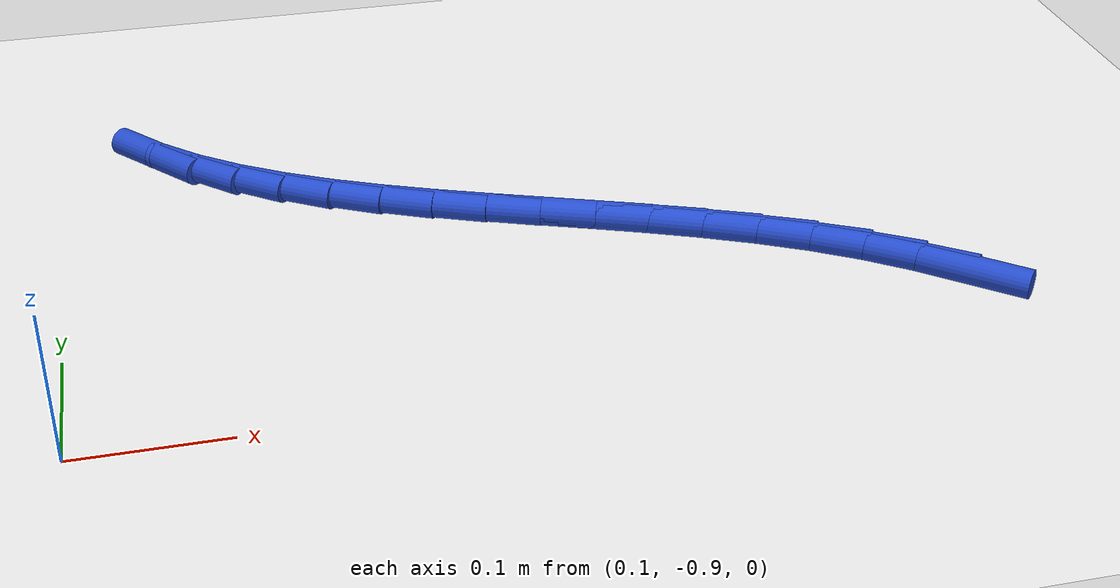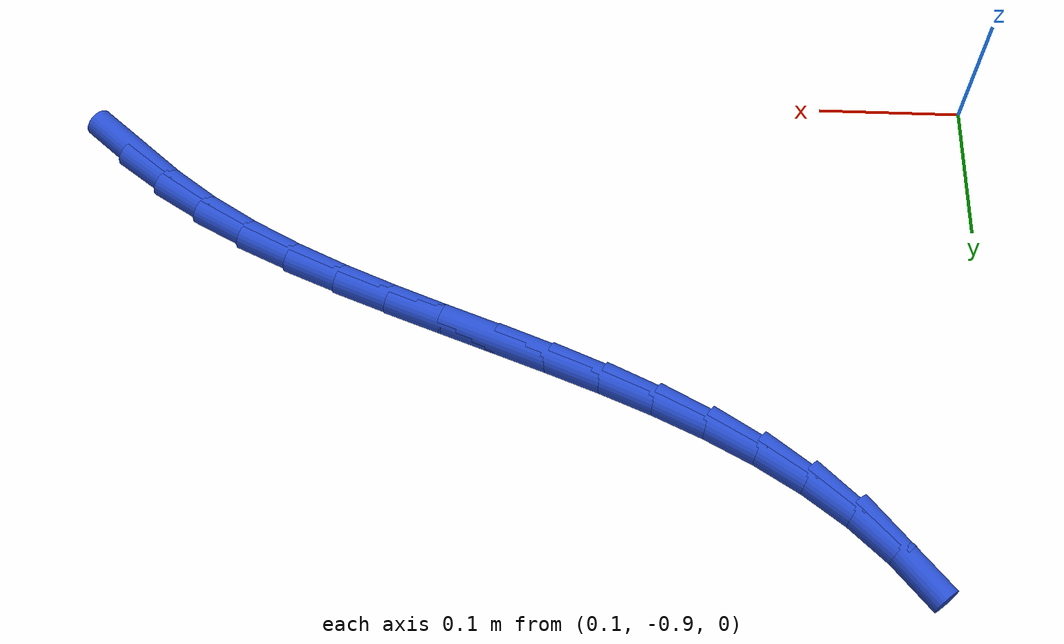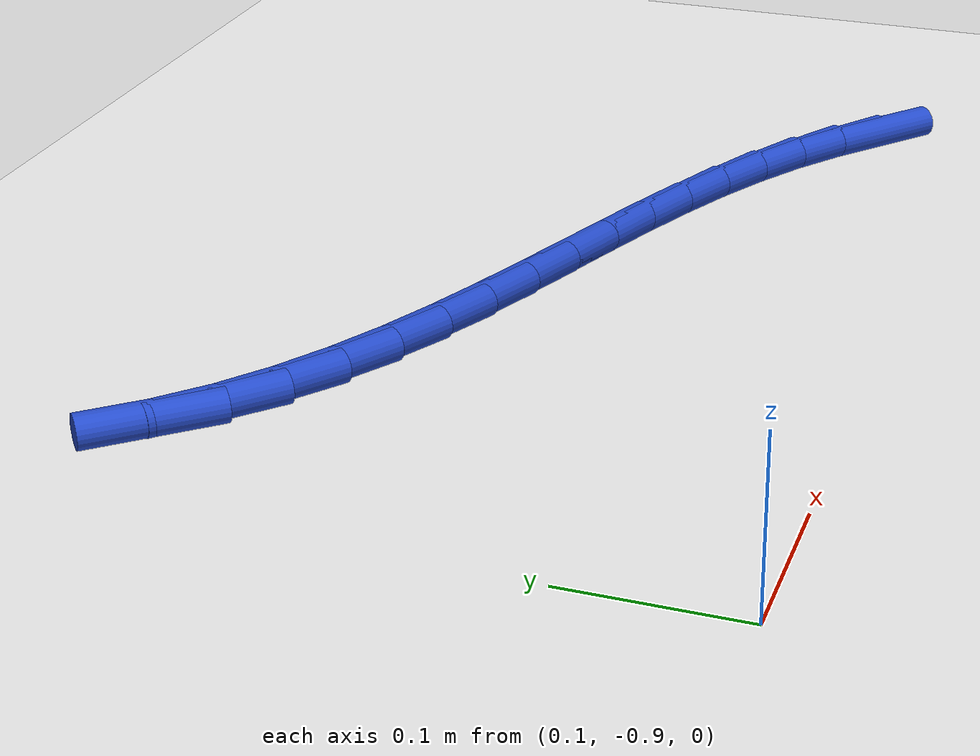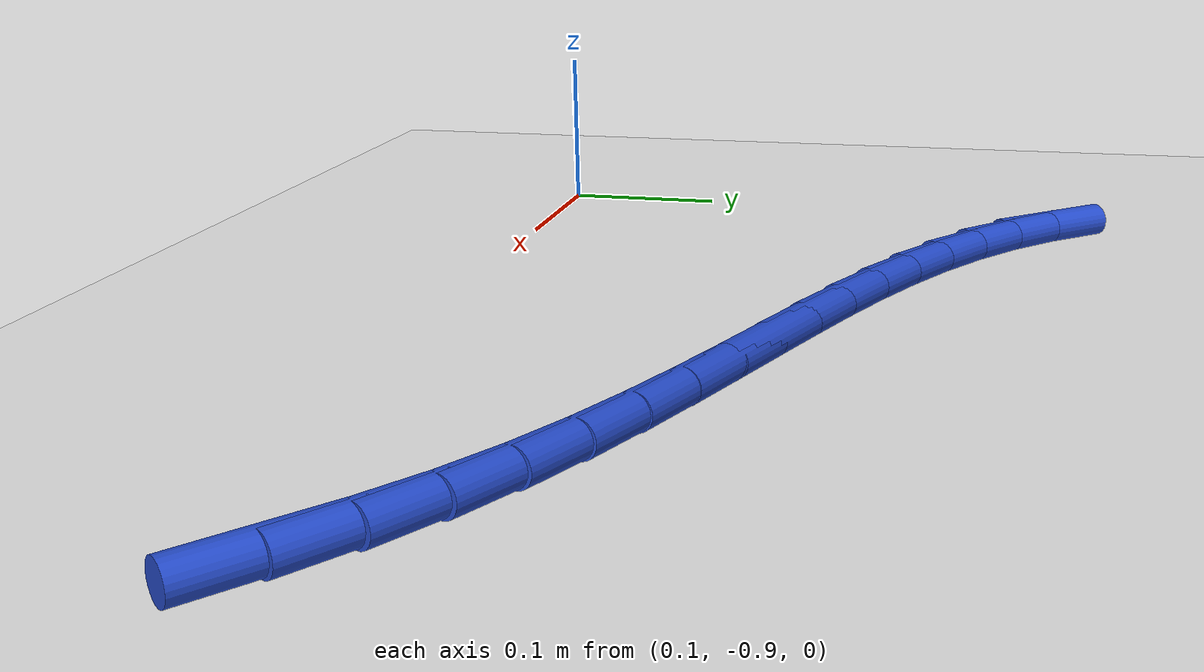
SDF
<sdf version="1.6">
 <world name="default">
  <model name="ground_plane">
   <static>1</static>
   <link name="link">
    <collision name="collision">
     <geometry><plane><normal>0 0 1</normal><size>100 100</size></plane></geometry>
     <surface><friction><ode><mu>100</mu><mu2>50</mu2></ode></friction></surface>
    </collision>
    <visual name="visual">
     <cast_shadows>0</cast_shadows>
     <geometry><plane><normal>0 0 1</normal><size>100 100</size></plane></geometry>
     <material>
      <script><uri>file://media/materials/scripts/gazebo.material</uri><name>Gazebo/WhiteGlow</name></script>
     </material>
    </visual>
   </link>
  </model>
  <model name="line">
   <link name="link_178">
    <pose>0.6868804999982882 -0.8401883846376353 0.01 0 1.57 -0.7030086272003601</pose>
    <collision name="collision">
     <geometry><cylinder><radius>0.01</radius><length>0.08</length></cylinder></geometry>
    </collision>
    <visual name="visual">
     <material>
      <script><name>Gazebo/Blue</name><uri>file://media/materials/scripts/gazebo.material</uri></script>
     </material>
     <geometry><cylinder><radius>0.01</radius><length>0.08</length></cylinder></geometry>
    </visual>
   </link>
   <link name="link_179">
    <pose>0.6593391513872803 -0.8168486185995215 0.01 0 1.57 -0.6321418803813845</pose>
    <collision name="collision">
     <geometry><cylinder><radius>0.01</radius><length>0.08</length></cylinder></geometry>
    </collision>
    <visual name="visual">
     <material>
      <script><name>Gazebo/Blue</name><uri>file://media/materials/scripts/gazebo.material</uri></script>
     </material>
     <geometry><cylinder><radius>0.01</radius><length>0.08</length></cylinder></geometry>
    </visual>
   </link>
   <link name="link_180">
    <pose>0.630131233093637 -0.7954567279335523 0.01 0 1.57 -0.5549828795149269</pose>
    <collision name="collision">
     <geometry><cylinder><radius>0.01</radius><length>0.08</length></cylinder></geometry>
    </collision>
    <visual name="visual">
     <material>
      <script><name>Gazebo/Blue</name><uri>file://media/materials/scripts/gazebo.material</uri></script>
     </material>
     <geometry><cylinder><radius>0.01</radius><length>0.08</length></cylinder></geometry>
    </visual>
   </link>
   <link name="link_181">
    <pose>0.5990710635265589 -0.7761999752501102 0.01 0 1.57 -0.4877151496964065</pose>
    <collision name="collision">
     <geometry><cylinder><radius>0.01</radius><length>0.08</length></cylinder></geometry>
    </collision>
    <visual name="visual">
     <material>
      <script><name>Gazebo/Blue</name><uri>file://media/materials/scripts/gazebo.material</uri></script>
     </material>
     <geometry><cylinder><radius>0.01</radius><length>0.08</length></cylinder></geometry>
    </visual>
   </link>
   <link name="link_182">
    <pose>0.5663605313344784 -0.7588484504576037 0.01 0 1.57 -0.43553203774939653</pose>
    <collision name="collision">
     <geometry><cylinder><radius>0.01</radius><length>0.08</length></cylinder></geometry>
    </collision>
    <visual name="visual">
     <material>
      <script><name>Gazebo/Blue</name><uri>file://media/materials/scripts/gazebo.material</uri></script>
     </material>
     <geometry><cylinder><radius>0.01</radius><length>0.08</length></cylinder></geometry>
    </visual>
   </link>
   <link name="link_183">
    <pose>0.5323436597792921 -0.7430192526649911 0.01 0 1.57 -0.3975996931562138</pose>
    <collision name="collision">
     <geometry><cylinder><radius>0.01</radius><length>0.08</length></cylinder></geometry>
    </collision>
    <visual name="visual">
     <material>
      <script><name>Gazebo/Blue</name><uri>file://media/materials/scripts/gazebo.material</uri></script>
     </material>
     <geometry><cylinder><radius>0.01</radius><length>0.08</length></cylinder></geometry>
    </visual>
   </link>
   <link name="link_184">
    <pose>0.4973646877692975 -0.7283292488638462 0.01 0 1.57 -0.37310336530262295</pose>
    <collision name="collision">
     <geometry><cylinder><radius>0.01</radius><length>0.08</length></cylinder></geometry>
    </collision>
    <visual name="visual">
     <material>
      <script><name>Gazebo/Blue</name><uri>file://media/materials/scripts/gazebo.material</uri></script>
     </material>
     <geometry><cylinder><radius>0.01</radius><length>0.08</length></cylinder></geometry>
    </visual>
   </link>
   <link name="link_185">
    <pose>0.4617678542127896 -0.7143953060457412 0.01 0 1.57 -0.3614465650283994</pose>
    <collision name="collision">
     <geometry><cylinder><radius>0.01</radius><length>0.08</length></cylinder></geometry>
    </collision>
    <visual name="visual">
     <material>
      <script><name>Gazebo/Blue</name><uri>file://media/materials/scripts/gazebo.material</uri></script>
     </material>
     <geometry><cylinder><radius>0.01</radius><length>0.08</length></cylinder></geometry>
    </visual>
   </link>
   <link name="link_186">
    <pose>0.42589739801806403 -0.7008342912022488 0.01 0 1.57 -0.3623481388323821</pose>
    <collision name="collision">
     <geometry><cylinder><radius>0.01</radius><length>0.08</length></cylinder></geometry>
    </collision>
    <visual name="visual">
     <material>
      <script><name>Gazebo/Blue</name><uri>file://media/materials/scripts/gazebo.material</uri></script>
     </material>
     <geometry><cylinder><radius>0.01</radius><length>0.08</length></cylinder></geometry>
    </visual>
   </link>
   <link name="link_187">
    <pose>0.3900975580934168 -0.6872630713249424 0.01 0 1.57 -0.37588272825907815</pose>
    <collision name="collision">
     <geometry><cylinder><radius>0.01</radius><length>0.08</length></cylinder></geometry>
    </collision>
    <visual name="visual">
     <material>
      <script><name>Gazebo/Blue</name><uri>file://media/materials/scripts/gazebo.material</uri></script>
     </material>
     <geometry><cylinder><radius>0.01</radius><length>0.08</length></cylinder></geometry>
    </visual>
   </link>
   <link name="link_188">
    <pose>0.3547125733471436 -0.6732985134053942 0.01 0 1.57 -0.402482653555329</pose>
    <collision name="collision">
     <geometry><cylinder><radius>0.01</radius><length>0.08</length></cylinder></geometry>
    </collision>
    <visual name="visual">
     <material>
      <script><name>Gazebo/Blue</name><uri>file://media/materials/scripts/gazebo.material</uri></script>
     </material>
     <geometry><cylinder><radius>0.01</radius><length>0.08</length></cylinder></geometry>
    </visual>
   </link>
   <link name="link_189">
    <pose>0.3200866826875395 -0.6585574844351769 0.01 0 1.57 -0.44289856984386006</pose>
    <collision name="collision">
     <geometry><cylinder><radius>0.01</radius><length>0.08</length></cylinder></geometry>
    </collision>
    <visual name="visual">
     <material>
      <script><name>Gazebo/Blue</name><uri>file://media/materials/scripts/gazebo.material</uri></script>
     </material>
     <geometry><cylinder><radius>0.01</radius><length>0.08</length></cylinder></geometry>
    </visual>
   </link>
   <link name="link_190">
    <pose>0.2865641250229019 -0.6426568514058641 0.01 0 1.57 -0.49809456450865774</pose>
    <collision name="collision">
     <geometry><cylinder><radius>0.01</radius><length>0.08</length></cylinder></geometry>
    </collision>
    <visual name="visual">
     <material>
      <script><name>Gazebo/Blue</name><uri>file://media/materials/scripts/gazebo.material</uri></script>
     </material>
     <geometry><cylinder><radius>0.01</radius><length>0.08</length></cylinder></geometry>
    </visual>
   </link>
   <link name="link_191">
    <pose>0.25448913926152567 -0.6252134813090281 0.01 0 1.57 -0.5690322178472603</pose>
    <collision name="collision">
     <geometry><cylinder><radius>0.01</radius><length>0.08</length></cylinder></geometry>
    </collision>
    <visual name="visual">
     <material>
      <script><name>Gazebo/Blue</name><uri>file://media/materials/scripts/gazebo.material</uri></script>
     </material>
     <geometry><cylinder><radius>0.01</radius><length>0.08</length></cylinder></geometry>
    </visual>
   </link>
   <link name="link_192">
    <pose>0.2242059643117068 -0.605844241136242 0.01 0 1.57 -0.65628926436591</pose>
    <collision name="collision">
     <geometry><cylinder><radius>0.01</radius><length>0.08</length></cylinder></geometry>
    </collision>
    <visual name="visual">
     <material>
      <script><name>Gazebo/Blue</name><uri>file://media/materials/scripts/gazebo.material</uri></script>
     </material>
     <geometry><cylinder><radius>0.01</radius><length>0.08</length></cylinder></geometry>
    </visual>
   </link>
   <link name="link_193">
    <pose>0.19605883908174096 -0.5841659978790785 0.01 0 1.57 -0.759482282286442</pose>
    <collision name="collision">
     <geometry><cylinder><radius>0.01</radius><length>0.08</length></cylinder></geometry>
    </collision>
    <visual name="visual">
     <material>
      <script><name>Gazebo/Blue</name><uri>file://media/materials/scripts/gazebo.material</uri></script>
     </material>
     <geometry><cylinder><radius>0.01</radius><length>0.08</length></cylinder></geometry>
    </visual>
   </link>
   <link name="link_194">
    <pose>0.1703917521102865 -0.5597959575427987 0.01 0 1.57 -0.870193620210084</pose>
    <collision name="collision">
     <geometry><cylinder><radius>0.01</radius><length>0.08</length></cylinder></geometry>
    </collision>
    <visual name="visual">
     <material>
      <script><name>Gazebo/Blue</name><uri>file://media/materials/scripts/gazebo.material</uri></script>
     </material>
     <geometry><cylinder><radius>0.01</radius><length>0.08</length></cylinder></geometry>
    </visual>
   </link>
  </model>
 </world>
</sdf>
